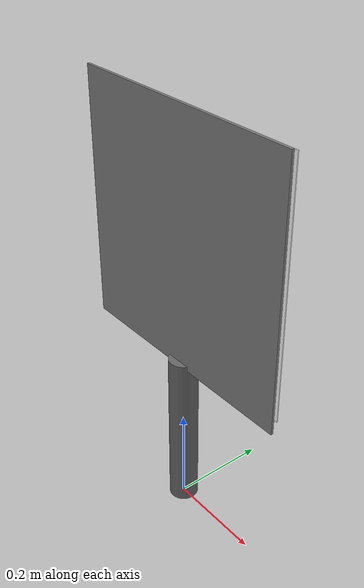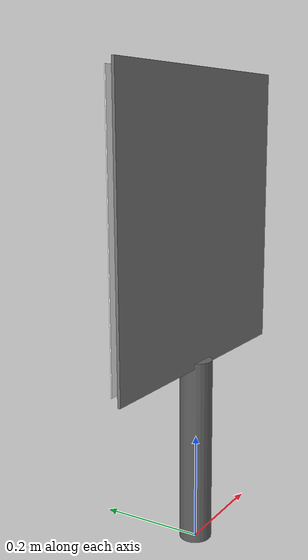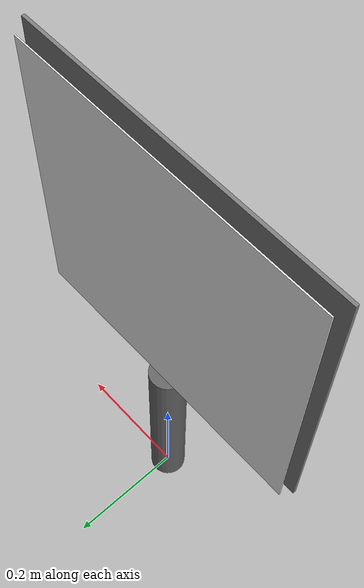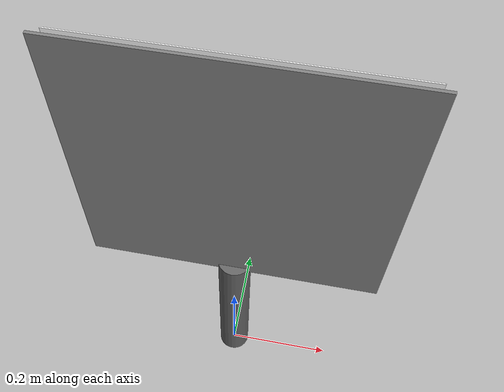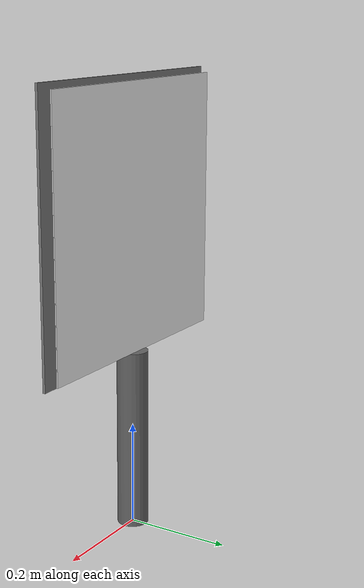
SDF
<?xml version="1.0"?>
<sdf version="1.6">
  <model name="aruco_marker_1">
    <static>true</static>
    <link name="link">
      <!-- Support pole: top reaches the panel's lower edge (0.35 m), no overlap -->
      <visual name="pole">
        <pose>0 0 0.175 0 0 0</pose>
        <geometry><cylinder><radius>0.03</radius><length>0.35</length></cylinder></geometry>
        <material>
          <ambient>0.3 0.3 0.3 1</ambient>
          <diffuse>0.4 0.4 0.4 1</diffuse>
          <specular>0.1 0.1 0.1 1</specular>
        </material>
      </visual>
      <collision name="pole_col">
        <pose>0 0 0.175 0 0 0</pose>
        <geometry><cylinder><radius>0.03</radius><length>0.35</length></cylinder></geometry>
      </collision>
      <!-- Marker panel 0.50 m, center 0.6 m high; lower edge at 0.35 m -->
      <!-- Local +Y face carries the texture; world yaw aims it inward. -->
      <visual name="marker">
        <pose>0 0.011 0.6 1.5708 0 0</pose>
        <geometry><box><size>0.50 0.50 0.002</size></box></geometry>
        <material>
          <ambient>1.0 1.0 1.0 1</ambient>
          <diffuse>1.0 1.0 1.0 1</diffuse>
          <specular>0.0 0.0 0.0 1</specular>
          <pbr>
            <metal>
              <albedo_map>model://aruco/marker_1/materials/textures/marker_1.png</albedo_map>
              <metalness>0.0</metalness>
              <roughness>1.0</roughness>
            </metal>
          </pbr>
        </material>
      </visual>
      <collision name="marker_col">
        <pose>0 0 0.6 0 0 0</pose>
        <geometry><box><size>0.50 0.04 0.52</size></box></geometry>
      </collision>
      <!-- Opaque gray backing on the local -Y side: occludes the texture from
           behind so a camera facing the back cannot detect a mirrored (flipped) marker. -->
      <visual name="back_panel">
        <pose>0 -0.01 0.6 1.5708 0 0</pose>
        <geometry><box><size>0.52 0.52 0.005</size></box></geometry>
        <material>
          <ambient>0.5 0.5 0.5 1</ambient>
          <diffuse>0.5 0.5 0.5 1</diffuse>
          <specular>0.1 0.1 0.1 1</specular>
        </material>
      </visual>
    </link>
  </model>
</sdf>
